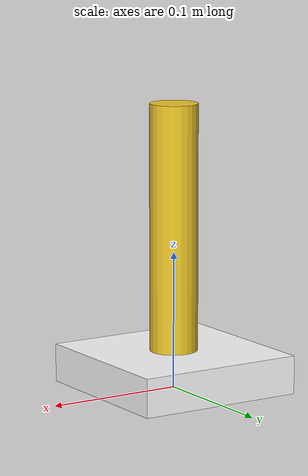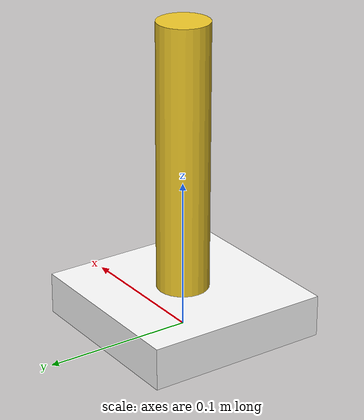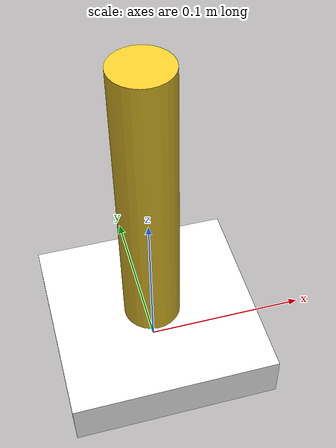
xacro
<robot xmlns:xacro="http://www.ros.org/wiki/xacro" name="ring_base">

    <xacro:arg name="ring_color" default="white"/>

    <xacro:property name="white" value="1.0 1.0 1.0 1.0" />
    <xacro:property name="yellow" value="0.94 0.79 0.16 1.0" />

    <!-- Base Link -->
    <link name="base">
        <visual>
            <origin xyz="0.0 0.0 0.014" rpy="0.0 0.0 0.0" />
            <geometry>
                <box size="0.125 0.125 0.028" />
            </geometry>
            <material name="White">
                <color rgba="${white}"/>
            </material>
        </visual>

        <collision>
            <origin xyz="0.0 0.0 0.014" rpy="0.0 0.0 0.0" />
            <geometry>
                <box size="0.125 0.125 0.028" />
            </geometry>
        </collision>
    </link>

    <joint name="base_stem_joint" type="fixed">
        <origin xyz="0 0 0.028" rpy="0 0 0"/>
        <parent link="base"/>
        <child link="stem"/>
    </joint>

    <!-- Stem Link -->
    <link name="stem">
        <visual>
            <origin xyz="0.0 0.0 0.09" rpy="0.0 0.0 0.0" />
            <geometry>
                <cylinder radius="0.0175" length="0.18"/>
            </geometry>
            <material name="Yellow">
                <color rgba="${yellow}"/>
            </material>
        </visual>

        <collision>
            <origin xyz="0.0 0.0 0.09" rpy="0.0 0.0 0.0" />
            <geometry>
                <cylinder radius="0.035" length="0.18"/>
            </geometry>
        </collision>
    </link>

</robot>
